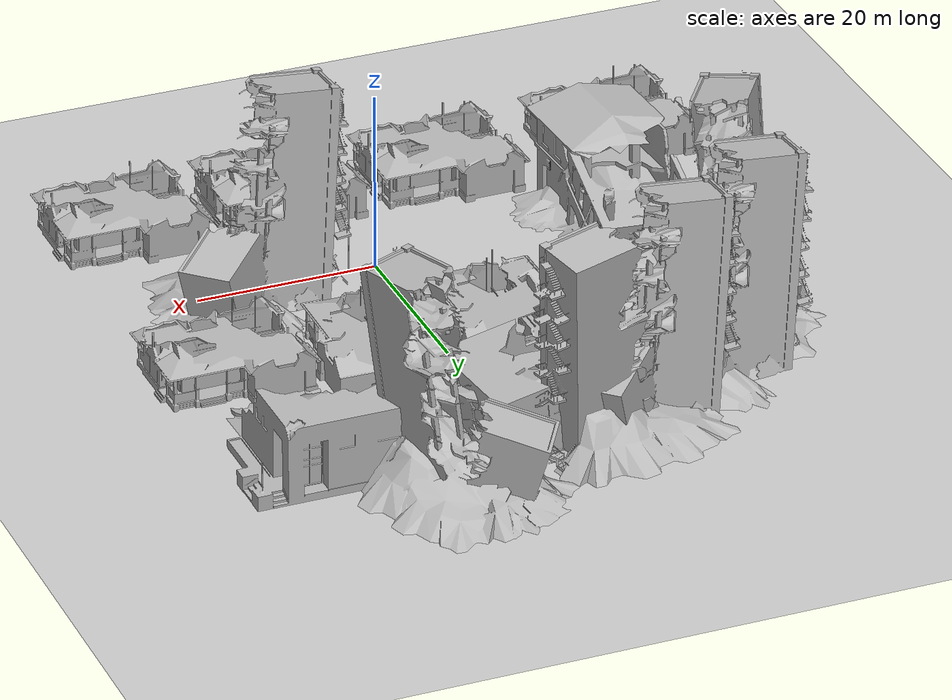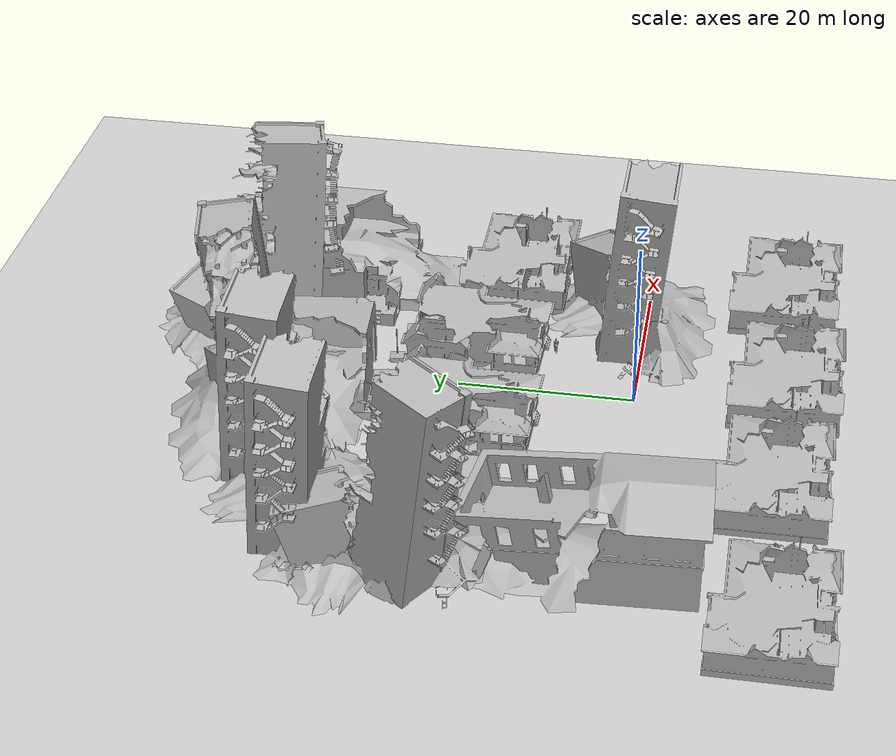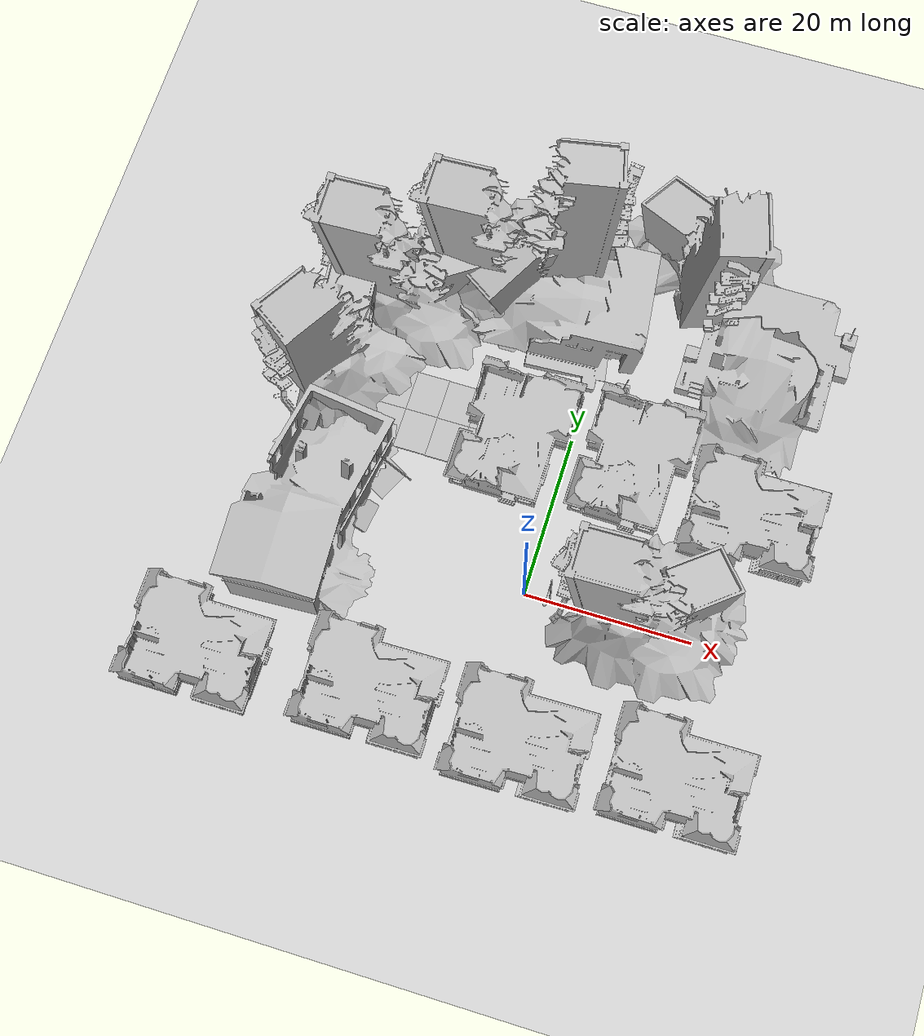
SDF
<sdf version="1.6">
 <world name="default">
  <light name="sun" type="directional">
   <cast_shadows>0</cast_shadows>
   <pose>0 0 10 0 -0 0</pose>
   <diffuse>0.8 0.8 0.8 1</diffuse>
   <specular>0.2 0.2 0.2 1</specular>
   <attenuation>
    <range>1000</range>
    <constant>0.9</constant>
    <linear>0.01</linear>
    <quadratic>0.001</quadratic>
   </attenuation>
   <direction>-0.5 0.1 -0.9</direction>
  </light>
  <model name="ground_plane">
   <static>1</static>
   <link name="link">
    <collision name="collision">
     <geometry><plane><normal>0 0 1</normal><size>100 100</size></plane></geometry>
     <surface><friction><ode><mu>100</mu><mu2>50</mu2></ode></friction></surface>
    </collision>
    <visual name="visual">
     <cast_shadows>0</cast_shadows>
     <geometry><plane><normal>0 0 1</normal><size>100 100</size></plane></geometry>
     <material>
      <script><uri>file://media/materials/scripts/gazebo.material</uri><name>Gazebo/Tertiary</name></script>
     </material>
    </visual>
    <velocity_decay><linear>0</linear><angular>0</angular></velocity_decay>
   </link>
  </model>
  <model name="collapsed_industrial">
   <static>1</static>
   <link name="link">
    <collision name="collision">
     <geometry><mesh><uri>model://collapsed_industrial/meshes/collapsed_industrial.dae</uri></mesh></geometry>
    </collision>
    <visual name="visual">
     <geometry><mesh><uri>model://collapsed_industrial/meshes/collapsed_industrial.dae</uri></mesh></geometry>
    </visual>
   </link>
   <pose>-24.7987 32.1365 0 0 -0 0</pose>
  </model>
  <model name="collapsed_industrial_1">
   <static>1</static>
   <link name="link">
    <collision name="collision">
     <geometry><mesh><uri>model://collapsed_industrial/meshes/collapsed_industrial.dae</uri></mesh></geometry>
    </collision>
    <visual name="visual">
     <geometry><mesh><uri>model://collapsed_industrial/meshes/collapsed_industrial.dae</uri></mesh></geometry>
    </visual>
   </link>
   <pose>10.5204 45.7692 0 0 -0 1.86314</pose>
  </model>
  <model name="collapsed_house">
   <static>1</static>
   <link name="link">
    <collision name="collision">
     <geometry>
      <mesh><scale>1.5 1.5 1.5</scale><uri>model://collapsed_house/meshes/collapsed_house.dae</uri></mesh>
     </geometry>
    </collision>
    <visual name="visual">
     <geometry>
      <mesh><scale>1.5 1.5 1.5</scale><uri>model://collapsed_house/meshes/collapsed_house.dae</uri></mesh>
     </geometry>
    </visual>
   </link>
   <pose>-6.52272 18.0439 0 0 0 -1.5768</pose>
  </model>
  <model name="collapsed_police_station">
   <static>1</static>
   <link name="link">
    <collision name="collision">
     <geometry>
      <mesh><uri>model://collapsed_police_station/meshes/collapsed_police_station.dae</uri></mesh>
     </geometry>
    </collision>
    <visual name="visual">
     <geometry>
      <mesh><uri>model://collapsed_police_station/meshes/collapsed_police_station.dae</uri></mesh>
     </geometry>
    </visual>
   </link>
   <pose>-7.20355 35.7652 0 -0.137035 -0.00662 -1.46184</pose>
  </model>
  <model name="collapsed_industrial_2">
   <static>1</static>
   <link name="link">
    <collision name="collision">
     <geometry><mesh><uri>model://collapsed_industrial/meshes/collapsed_industrial.dae</uri></mesh></geometry>
    </collision>
    <visual name="visual">
     <geometry><mesh><uri>model://collapsed_industrial/meshes/collapsed_industrial.dae</uri></mesh></geometry>
    </visual>
   </link>
   <pose>-14.0646 37.9291 0 0 -0 0</pose>
  </model>
  <model name="Lamp Post">
   <static>1</static>
   <link name="link">
    <collision name="collision">
     <geometry><mesh><uri>model://lamp_post/meshes/lamp_post.dae</uri><scale>3 3 3</scale></mesh></geometry>
    </collision>
    <visual name="visual">
     <geometry><mesh><uri>model://lamp_post/meshes/lamp_post.dae</uri><scale>3 3 3</scale></mesh></geometry>
    </visual>
   </link>
   <pose>-17.066 9.61993 -0.122662 0.075232 -0.438267 -0.034017</pose>
  </model>
  <model name="collapsed_industrial_3">
   <static>1</static>
   <link name="link">
    <collision name="collision">
     <geometry><mesh><uri>model://collapsed_industrial/meshes/collapsed_industrial.dae</uri></mesh></geometry>
    </collision>
    <visual name="visual">
     <geometry><mesh><uri>model://collapsed_industrial/meshes/collapsed_industrial.dae</uri></mesh></geometry>
    </visual>
   </link>
   <pose>-29.9002 22.4488 0 0 -0 0.991688</pose>
  </model>
  <model name="collapsed_police_station_1">
   <static>1</static>
   <link name="link">
    <collision name="collision">
     <geometry>
      <mesh><uri>model://collapsed_police_station/meshes/collapsed_police_station.dae</uri></mesh>
     </geometry>
    </collision>
    <visual name="visual">
     <geometry>
      <mesh><uri>model://collapsed_police_station/meshes/collapsed_police_station.dae</uri></mesh>
     </geometry>
    </visual>
   </link>
   <pose>19.7767 31.6289 0 0 -0 0</pose>
  </model>
  <model name="collapsed_house_1">
   <static>1</static>
   <link name="link">
    <collision name="collision">
     <geometry>
      <mesh><scale>1.5 1.5 1.5</scale><uri>model://collapsed_house/meshes/collapsed_house.dae</uri></mesh>
     </geometry>
    </collision>
    <visual name="visual">
     <geometry>
      <mesh><scale>1.5 1.5 1.5</scale><uri>model://collapsed_house/meshes/collapsed_house.dae</uri></mesh>
     </geometry>
    </visual>
   </link>
   <pose>7.94227 18.853 0 0 0 -1.58721</pose>
  </model>
  <model name="collapsed_house_2">
   <static>1</static>
   <link name="link">
    <collision name="collision">
     <geometry>
      <mesh><scale>1.5 1.5 1.5</scale><uri>model://collapsed_house/meshes/collapsed_house.dae</uri></mesh>
     </geometry>
    </collision>
    <visual name="visual">
     <geometry>
      <mesh><scale>1.5 1.5 1.5</scale><uri>model://collapsed_house/meshes/collapsed_house.dae</uri></mesh>
     </geometry>
    </visual>
   </link>
   <pose>-13.4945 -15.89 0 0 -0 0.007813</pose>
  </model>
  <model name="collapsed_fire_station">
   <static>1</static>
   <link name="link">
    <collision name="collision">
     <geometry><mesh><uri>model://collapsed_fire_station/meshes/collapsed_fire_station.dae</uri></mesh></geometry>
    </collision>
    <visual name="visual">
     <geometry><mesh><uri>model://collapsed_fire_station/meshes/collapsed_fire_station.dae</uri></mesh></geometry>
    </visual>
   </link>
   <pose>-26.5833 3.73324 0 0 -0 1.61783</pose>
  </model>
  <model name="collapsed_industrial_0">
   <static>1</static>
   <link name="link">
    <collision name="collision">
     <geometry><mesh><uri>model://collapsed_industrial/meshes/collapsed_industrial.dae</uri></mesh></geometry>
    </collision>
    <visual name="visual">
     <geometry><mesh><uri>model://collapsed_industrial/meshes/collapsed_industrial.dae</uri></mesh></geometry>
    </visual>
   </link>
   <pose>-9.86275 41.7659 0 0 0 -2.90069</pose>
  </model>
  <model name="collapsed_house_0">
   <static>1</static>
   <link name="link">
    <collision name="collision">
     <geometry>
      <mesh><scale>1.5 1.5 1.5</scale><uri>model://collapsed_house/meshes/collapsed_house.dae</uri></mesh>
     </geometry>
    </collision>
    <visual name="visual">
     <geometry>
      <mesh><scale>1.5 1.5 1.5</scale><uri>model://collapsed_house/meshes/collapsed_house.dae</uri></mesh>
     </geometry>
    </visual>
   </link>
   <pose>-33.9164 -16.9381 0 0 -0 0</pose>
  </model>
  <model name="person_walking">
   <link name="link">
    <inertial>
     <pose>0 0 0.95 0 -0 0</pose>
     <mass>80</mass>
     <inertia><ixx>27.82</ixx><ixy>0</ixy><ixz>0</ixz><iyy>24.88</iyy><iyz>0</iyz><izz>4.57</izz></inertia>
    </inertial>
    <collision name="bottom">
     <pose>0 0 0.01 0 -0 0</pose>
     <geometry><box><size>0.35 0.75 0.02</size></box></geometry>
    </collision>
    <collision name="person">
     <pose>0 0 -0.02 0 -0 0</pose>
     <geometry><mesh><uri>model://person_walking/meshes/walking.dae</uri></mesh></geometry>
    </collision>
    <visual name="visual">
     <pose>0 0 -0.02 0 -0 0</pose>
     <geometry><mesh><uri>model://person_walking/meshes/walking.dae</uri></mesh></geometry>
    </visual>
   </link>
   <pose>7.83826 9.92741 -1e-06 -2e-06 1e-06 1.56851</pose>
  </model>
  <physics name="default_physics" default="0" type="ode">
   <max_step_size>0.001</max_step_size>
   <real_time_factor>1</real_time_factor>
   <real_time_update_rate>1000</real_time_update_rate>
  </physics>
  <scene>
   <sky><clouds><speed>12</speed></clouds></sky>
   <ambient>0.4 0.4 0.4 1</ambient>
   <background>0.7 0.7 0.7 1</background>
   <shadows>1</shadows>
  </scene>
  <gravity>0 0 -9.8</gravity>
  <magnetic_field>6e-06 2.3e-05 -4.2e-05</magnetic_field>
  <atmosphere type="adiabatic"/>
  <spherical_coordinates>
   <surface_model>EARTH_WGS84</surface_model>
   <latitude_deg>0</latitude_deg>
   <longitude_deg>0</longitude_deg>
   <elevation>0</elevation>
   <heading_deg>0</heading_deg>
  </spherical_coordinates>
  <model name="collapsed_house_3">
   <static>1</static>
   <link name="link">
    <collision name="collision">
     <geometry>
      <mesh><scale>1.5 1.5 1.5</scale><uri>model://collapsed_house/meshes/collapsed_house.dae</uri></mesh>
     </geometry>
    </collision>
    <visual name="visual">
     <geometry>
      <mesh><scale>1.5 1.5 1.5</scale><uri>model://collapsed_house/meshes/collapsed_house.dae</uri></mesh>
     </geometry>
    </visual>
   </link>
   <pose>22.9761 16.2429 0 0 -0 0.008057</pose>
  </model>
  <model name="collapsed_house_4">
   <static>1</static>
   <link name="link">
    <collision name="collision">
     <geometry>
      <mesh><scale>1.5 1.5 1.5</scale><uri>model://collapsed_house/meshes/collapsed_house.dae</uri></mesh>
     </geometry>
    </collision>
    <visual name="visual">
     <geometry>
      <mesh><scale>1.5 1.5 1.5</scale><uri>model://collapsed_house/meshes/collapsed_house.dae</uri></mesh>
     </geometry>
    </visual>
   </link>
   <pose>4.36537 -16.6995 0 0 -0 0.012178</pose>
  </model>
  <light name="user_directional_light_0" type="directional">
   <pose>47.2198 41.26 1 0 -0 0</pose>
   <diffuse>0.5 0.5 0.5 1</diffuse>
   <specular>0.1 0.1 0.1 1</specular>
   <direction>0.1 0.1 -0.9</direction>
   <attenuation>
    <range>20</range>
    <constant>0.5</constant>
    <linear>0.01</linear>
    <quadratic>0.001</quadratic>
   </attenuation>
  </light>
  <light name="user_directional_light_1" type="directional">
   <pose>47.084 44.6099 1 0 -0 0</pose>
   <diffuse>0.5 0.5 0.5 1</diffuse>
   <specular>0.1 0.1 0.1 1</specular>
   <direction>0.1 0.1 -0.9</direction>
   <attenuation>
    <range>20</range>
    <constant>0.5</constant>
    <linear>0.01</linear>
    <quadratic>0.001</quadratic>
   </attenuation>
  </light>
  <light name="user_directional_light_2" type="directional">
   <pose>46.778 36.8275 1 0 -0 0</pose>
   <diffuse>0.5 0.5 0.5 1</diffuse>
   <specular>0.1 0.1 0.1 1</specular>
   <direction>0.1 0.1 -0.9</direction>
   <attenuation>
    <range>20</range>
    <constant>0.5</constant>
    <linear>0.01</linear>
    <quadratic>0.001</quadratic>
   </attenuation>
  </light>
  <light name="user_directional_light_3" type="directional">
   <pose>47.0218 30.986 1 0 -0 0</pose>
   <diffuse>0.5 0.5 0.5 1</diffuse>
   <specular>0.1 0.1 0.1 1</specular>
   <direction>0.1 0.1 -0.9</direction>
   <attenuation>
    <range>20</range>
    <constant>0.5</constant>
    <linear>0.01</linear>
    <quadratic>0.001</quadratic>
   </attenuation>
  </light>
  <light name="user_directional_light_4" type="directional">
   <pose>-45.3013 46.6283 1 0 -0 0</pose>
   <diffuse>0.5 0.5 0.5 1</diffuse>
   <specular>0.1 0.1 0.1 1</specular>
   <direction>0.1 0.1 -0.9</direction>
   <attenuation>
    <range>20</range>
    <constant>0.5</constant>
    <linear>0.01</linear>
    <quadratic>0.001</quadratic>
   </attenuation>
  </light>
  <light name="user_directional_light_5" type="directional">
   <pose>-39.9951 40.3059 1 0 -0 0</pose>
   <diffuse>0.5 0.5 0.5 1</diffuse>
   <specular>0.1 0.1 0.1 1</specular>
   <direction>0.1 0.1 -0.9</direction>
   <attenuation>
    <range>20</range>
    <constant>0.5</constant>
    <linear>0.01</linear>
    <quadratic>0.001</quadratic>
   </attenuation>
  </light>
  <light name="user_directional_light_6" type="directional">
   <pose>-44.1717 44.5701 1 0 -0 0</pose>
   <diffuse>0.5 0.5 0.5 1</diffuse>
   <specular>0.1 0.1 0.1 1</specular>
   <direction>0.1 0.1 -0.9</direction>
   <attenuation>
    <range>20</range>
    <constant>0.5</constant>
    <linear>0.01</linear>
    <quadratic>0.001</quadratic>
   </attenuation>
  </light>
  <light name="user_directional_light_7" type="directional">
   <pose>-43.0214 40.7123 1 0 -0 0</pose>
   <diffuse>0.5 0.5 0.5 1</diffuse>
   <specular>0.1 0.1 0.1 1</specular>
   <direction>0.1 0.1 -0.9</direction>
   <attenuation>
    <range>20</range>
    <constant>0.5</constant>
    <linear>0.01</linear>
    <quadratic>0.001</quadratic>
   </attenuation>
  </light>
  <light name="user_directional_light_8" type="directional">
   <pose>-43.5615 40.451 1 0 -0 0</pose>
   <diffuse>0.5 0.5 0.5 1</diffuse>
   <specular>0.1 0.1 0.1 1</specular>
   <direction>0.1 0.1 -0.9</direction>
   <attenuation>
    <range>20</range>
    <constant>0.5</constant>
    <linear>0.01</linear>
    <quadratic>0.001</quadratic>
   </attenuation>
  </light>
  <light name="user_directional_light_9" type="directional">
   <pose>-42.0473 46.3343 1 0 -0 0</pose>
   <diffuse>0.5 0.5 0.5 1</diffuse>
   <specular>0.1 0.1 0.1 1</specular>
   <direction>0.1 0.1 -0.9</direction>
   <attenuation>
    <range>20</range>
    <constant>0.5</constant>
    <linear>0.01</linear>
    <quadratic>0.001</quadratic>
   </attenuation>
  </light>
  <light name="user_directional_light_10" type="directional">
   <pose>48.5663 40.4378 1 0 -0 0</pose>
   <diffuse>0.5 0.5 0.5 1</diffuse>
   <specular>0.1 0.1 0.1 1</specular>
   <direction>0.1 0.1 -0.9</direction>
   <attenuation>
    <range>20</range>
    <constant>0.5</constant>
    <linear>0.01</linear>
    <quadratic>0.001</quadratic>
   </attenuation>
  </light>
  <light name="user_directional_light_11" type="directional">
   <pose>48.1995 35.3939 1 0 -0 0</pose>
   <diffuse>0.5 0.5 0.5 1</diffuse>
   <specular>0.1 0.1 0.1 1</specular>
   <direction>0.1 0.1 -0.9</direction>
   <attenuation>
    <range>20</range>
    <constant>0.5</constant>
    <linear>0.01</linear>
    <quadratic>0.001</quadratic>
   </attenuation>
  </light>
  <model name="collapsed_house_5">
   <static>1</static>
   <link name="link">
    <collision name="collision">
     <geometry>
      <mesh><scale>1.5 1.5 1.5</scale><uri>model://collapsed_house/meshes/collapsed_house.dae</uri></mesh>
     </geometry>
    </collision>
    <visual name="visual">
     <geometry>
      <mesh><scale>1.5 1.5 1.5</scale><uri>model://collapsed_house/meshes/collapsed_house.dae</uri></mesh>
     </geometry>
    </visual>
   </link>
   <pose>22.4648 -15.9178 0 0 -0 0</pose>
  </model>
  <model name="mud_box">
   <static>1</static>
   <link name="link">
    <collision name="collision"><geometry><box><size>8 10 0.2</size></box></geometry></collision>
    <visual name="visual_1">
     <pose>-2 2.5 0 0 -0 0</pose>
     <cast_shadows>0</cast_shadows>
     <geometry><box><size>4 5 0.2</size></box></geometry>
     <material>
      <script>
       <uri>model://mud_box/materials/scripts</uri>
       <uri>model://mud_box/materials/textures</uri>
       <name>vrc/mud</name>
      </script>
     </material>
    </visual>
    <visual name="visual_2">
     <pose>2 2.5 0 0 -0 0</pose>
     <cast_shadows>0</cast_shadows>
     <geometry><box><size>4 5 0.2</size></box></geometry>
     <material>
      <script>
       <uri>model://mud_box/materials/scripts</uri>
       <uri>model://mud_box/materials/textures</uri>
       <name>vrc/mud</name>
      </script>
     </material>
    </visual>
    <visual name="visual_3">
     <pose>2 -2.5 0 0 -0 0</pose>
     <cast_shadows>0</cast_shadows>
     <geometry><box><size>4 5 0.2</size></box></geometry>
     <material>
      <script>
       <uri>model://mud_box/materials/scripts</uri>
       <uri>model://mud_box/materials/textures</uri>
       <name>vrc/mud</name>
      </script>
     </material>
    </visual>
    <visual name="visual_4">
     <pose>-2 -2.5 0 0 -0 0</pose>
     <cast_shadows>0</cast_shadows>
     <geometry><box><size>4 5 0.2</size></box></geometry>
     <material>
      <script>
       <uri>model://mud_box/materials/scripts</uri>
       <uri>model://mud_box/materials/textures</uri>
       <name>vrc/mud</name>
      </script>
     </material>
    </visual>
   </link>
   <pose>-20.3933 18.093 0 0 -0 0</pose>
  </model>
  <model name="mud_box_0">
   <static>1</static>
   <link name="link">
    <collision name="collision"><geometry><box><size>8 10 0.2</size></box></geometry></collision>
    <visual name="visual_1">
     <pose>-2 2.5 0 0 -0 0</pose>
     <cast_shadows>0</cast_shadows>
     <geometry><box><size>4 5 0.2</size></box></geometry>
     <material>
      <script>
       <uri>model://mud_box/materials/scripts</uri>
       <uri>model://mud_box/materials/textures</uri>
       <name>vrc/mud</name>
      </script>
     </material>
    </visual>
    <visual name="visual_2">
     <pose>2 2.5 0 0 -0 0</pose>
     <cast_shadows>0</cast_shadows>
     <geometry><box><size>4 5 0.2</size></box></geometry>
     <material>
      <script>
       <uri>model://mud_box/materials/scripts</uri>
       <uri>model://mud_box/materials/textures</uri>
       <name>vrc/mud</name>
      </script>
     </material>
    </visual>
    <visual name="visual_3">
     <pose>2 -2.5 0 0 -0 0</pose>
     <cast_shadows>0</cast_shadows>
     <geometry><box><size>4 5 0.2</size></box></geometry>
     <material>
      <script>
       <uri>model://mud_box/materials/scripts</uri>
       <uri>model://mud_box/materials/textures</uri>
       <name>vrc/mud</name>
      </script>
     </material>
    </visual>
    <visual name="visual_4">
     <pose>-2 -2.5 0 0 -0 0</pose>
     <cast_shadows>0</cast_shadows>
     <geometry><box><size>4 5 0.2</size></box></geometry>
     <material>
      <script>
       <uri>model://mud_box/materials/scripts</uri>
       <uri>model://mud_box/materials/textures</uri>
       <name>vrc/mud</name>
      </script>
     </material>
    </visual>
   </link>
   <pose>-12.4127 18.0496 0 0 -0 0</pose>
  </model>
  <model name="collapsed_industrial_4">
   <static>1</static>
   <link name="link">
    <collision name="collision">
     <geometry><mesh><uri>model://collapsed_industrial/meshes/collapsed_industrial.dae</uri></mesh></geometry>
    </collision>
    <visual name="visual">
     <geometry><mesh><uri>model://collapsed_industrial/meshes/collapsed_industrial.dae</uri></mesh></geometry>
    </visual>
   </link>
   <pose>13.7651 0.886619 0 0 -0 0</pose>
  </model>
  <model name="Lamp Post_0">
   <static>1</static>
   <link name="link">
    <collision name="collision">
     <geometry><mesh><uri>model://lamp_post/meshes/lamp_post.dae</uri><scale>3 3 3</scale></mesh></geometry>
    </collision>
    <visual name="visual">
     <geometry><mesh><uri>model://lamp_post/meshes/lamp_post.dae</uri><scale>3 3 3</scale></mesh></geometry>
    </visual>
   </link>
   <pose>3.03178 -0.067108 0 0 -0 0</pose>
  </model>
 </world>
</sdf>
